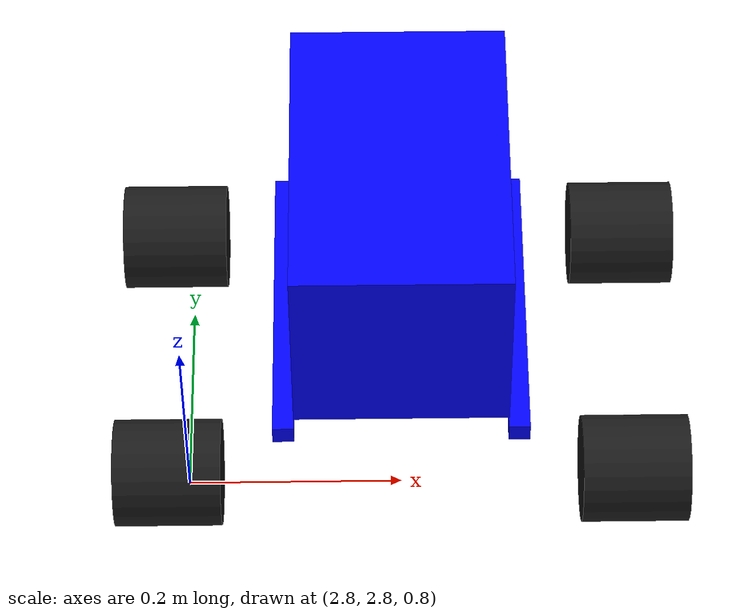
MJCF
<mujoco model="rover">
  <compiler angle="degree"/>
  <option timestep="0.005" gravity="0 0 -1.81" cone="elliptic"/>
  <!-- 0.001 and rk4 integrator -->
  <!-- add sensor to joint?? use sensor array instead of qvel -->

  <worldbody>
    <!-- Chassis -->
    <body name="chassis" pos="3 3 1">
      <inertial pos="0 -0.073 -0.1090" mass="8" diaginertia="1 1 1"/>
      <joint name="chassis_free" type="free"/>
      <geom type="box" size="0.1 0.15 0.1" pos="0 -0.05 0" rgba="0 0 1 1" mass="0.05"/>

      <!-- Left rocker -->
      <body name="rocker-left" pos="0 0 0">
        <joint name="rocker-left-hinge" type="hinge" range="-35 35" frictionloss="0.135" axis="1 0 0" pos="-0.18 -0.073 -0.109"/>
        <geom type="box" size="0.01 0.15 0.01" pos="-.11 -.05 -.125" rgba="0 0 1 1" mass="0.2"/>

        <!-- Front Left Wheel -->
        <body name="wheel-f-left" pos="-0.21779 0.0694 -0.16307" euler="0 90 0">
          <joint name="wheel-f-left-hinge" damping="1.89" type="hinge" axis="0 0 1"/>
          <!-- sliding friction | rotational friction | rolling friction -->
          <geom name="wheel-f-left-geom" type="cylinder" size="0.05 0.05" rgba="0.1 0.1 0.1 1" density="100" condim="4" friction="2.0 0.050 0.015"/>
          <inertial pos="0 0 0" mass="0.24" diaginertia="0.001 0.001 0.001"/>
        </body>

        <!-- Back Left Wheel -->
        <body name="wheel-b-left" pos="-0.21779 -0.21384 -0.16307" euler="0 90 0">
          <joint name="wheel-b-left-hinge" type="hinge" damping="1.89" axis="0 0 1"/>
          <geom name="wheel-b-left-geom" type="cylinder" size="0.05 0.05" rgba="0.1 0.1 0.1 1" density="100" condim="4" friction="2.0 0.050 0.015"/>
          <inertial pos="0 0 0" mass="0.24" diaginertia="0.001 0.001 0.001"/>
        </body>
      </body>

      <!-- Right rocker -->
      <body name="rocker-right" pos="0 0 0">
        <joint name="rocker-right-hinge" type="hinge" range="-35 35" frictionloss="0.135" axis="1 0 0" pos="0.18 -0.073 -0.109"/>
        <geom type="box" size="0.01 0.15 0.01" pos=".11 -.05 -.125" rgba="0 0 1 1" mass="0.2"/>

        <!-- Front Right Wheel -->
        <body name="wheel-f-right" pos="0.21779 0.0694 -0.16307" euler="0 90 0">
          <joint name="wheel-f-right-hinge" type="hinge" damping="1.89" axis="0 0 1"/>
          <geom name="wheel-f-right-geom" type="cylinder" size="0.05 0.05" rgba="0.1 0.1 0.1 1" density="100" condim="4" friction="2.0 0.050 0.015"/>
          <inertial pos="0 0 0" mass="0.24" diaginertia="0.001 0.001 0.001"/>
        </body>

        <!-- Back Right Wheel -->
        <body name="wheel-b-right" pos="0.21779 -0.21384 -0.16307" euler="0 90 0">
          <joint name="wheel-b-right-hinge" type="hinge" damping="1.89" axis="0 0 1"/>
          <geom name="wheel-b-right-geom" type="cylinder" size="0.05 0.05" rgba="0.1 0.1 0.1 1" density="100" condim="4" friction="2.0 0.050 0.015"/>
          <inertial pos="0 0 0" mass="0.24" diaginertia="0.001 0.001 0.001"/>
        </body>
      </body>
    </body>
  </worldbody>

  <actuator>
    <!-- Wheel drive motors: force-driven, max 4.5 N·m (matches real motor spec) -->
    <!-- Joint damping=1.89 N·m·s/rad models viscous friction / back-EMF -->
    <motor name="wheel-f-left-motor"  joint="wheel-f-left-hinge"  ctrlrange="-4.5 4.5" forcerange="-4.5 4.5"/>
    <motor name="wheel-b-left-motor"  joint="wheel-b-left-hinge"  ctrlrange="-4.5 4.5" forcerange="-4.5 4.5"/>
    <motor name="wheel-f-right-motor" joint="wheel-f-right-hinge" ctrlrange="-4.5 4.5" forcerange="-4.5 4.5"/>
    <motor name="wheel-b-right-motor" joint="wheel-b-right-hinge" ctrlrange="-4.5 4.5" forcerange="-4.5 4.5"/>
  </actuator>

  <equality>
    <!-- Differential constraint: rocker-left + rocker-right = 0 -->
    <joint joint1="rocker-left-hinge" joint2="rocker-right-hinge" polycoef="0 -1 0 0 0"/>
  </equality>

  <contact>
    <!-- Disable self-collisions -->
    <exclude body1="wheel-f-right" body2="rocker-right"/>
    <exclude body1="wheel-b-right" body2="rocker-right"/>
    <exclude body1="wheel-f-left" body2="rocker-left"/>
    <exclude body1="wheel-b-left" body2="rocker-left"/>
    <exclude body1="wheel-f-right" body2="chassis"/>
    <exclude body1="wheel-b-right" body2="chassis"/>
    <exclude body1="wheel-f-left" body2="chassis"/>
    <exclude body1="wheel-b-left" body2="chassis"/>
    <exclude body1="rocker-right" body2="chassis"/>
    <exclude body1="rocker-left" body2="chassis"/>
  </contact>
</mujoco>
